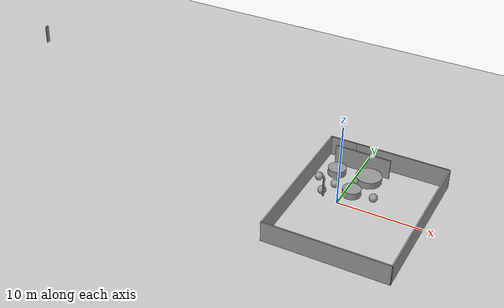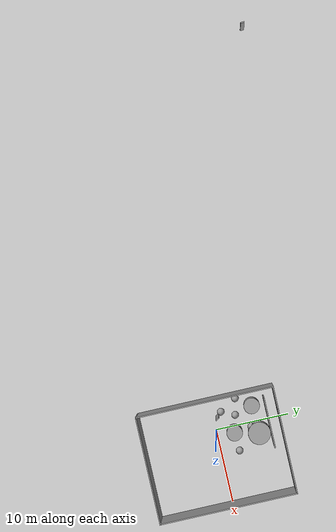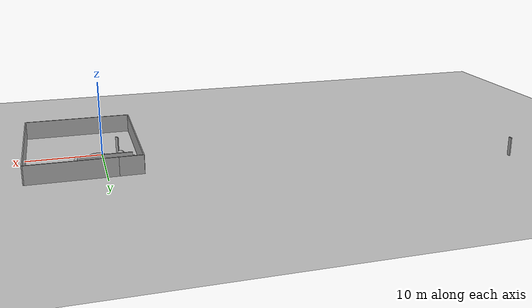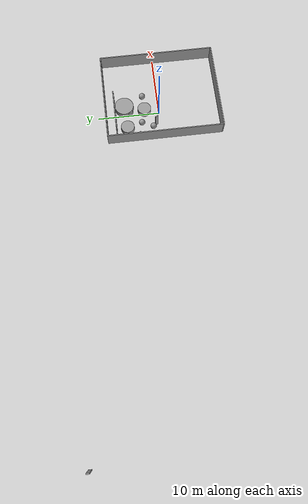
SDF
<sdf version="1.7">
 <world name="default">
  <model name="ground_plane">
   <static>1</static>
   <link name="link">
    <collision name="collision">
     <geometry><plane><normal>0 0 1</normal><size>100 100</size></plane></geometry>
     <surface><friction><ode><mu>100</mu><mu2>50</mu2></ode></friction></surface>
    </collision>
    <visual name="visual">
     <cast_shadows>0</cast_shadows>
     <geometry><plane><normal>0 0 1</normal><size>100 100</size></plane></geometry>
     <material>
      <script><uri>file://media/materials/scripts/gazebo.material</uri><name>Gazebo/Grey</name></script>
     </material>
    </visual>
   </link>
  </model>
  <model name="Base_square">
   <pose>-21.2675 2.85477 0 0 -0 0</pose>
   <link name="Wall_17">
    <collision name="Wall_17_Collision">
     <geometry><box><size>18.75 0.15 2.5</size></box></geometry>
     <pose>0 0 1.25 0 -0 0</pose>
    </collision>
    <visual name="Wall_17_Visual">
     <pose>0 0 1.25 0 -0 0</pose>
     <geometry><box><size>18.75 0.15 2.5</size></box></geometry>
     <material>
      <script><uri>file://media/materials/scripts/gazebo.material</uri><name>Gazebo/Grey</name></script>
      <ambient>1 1 1 1</ambient>
     </material>
     <meta><layer>0</layer></meta>
    </visual>
    <pose>16.7268 -3.44544 0 0 -0 -1.5708</pose>
   </link>
   <link name="Wall_18">
    <collision name="Wall_18_Collision">
     <geometry><box><size>14.6395 0.15 2.5</size></box></geometry>
     <pose>0 0 1.25 0 -0 0</pose>
    </collision>
    <visual name="Wall_18_Visual">
     <pose>0 0 1.25 0 -0 0</pose>
     <geometry><box><size>14.6395 0.15 2.5</size></box></geometry>
     <material>
      <script><uri>file://media/materials/scripts/gazebo.material</uri><name>Gazebo/Grey</name></script>
      <ambient>1 1 1 1</ambient>
     </material>
     <meta><layer>0</layer></meta>
    </visual>
    <pose>23.9714 -12.7722 0 0 -0 0.003693</pose>
   </link>
   <link name="Wall_19">
    <collision name="Wall_19_Collision">
     <geometry><box><size>18.75 0.15 2.5</size></box></geometry>
     <pose>0 0 1.25 0 -0 0</pose>
    </collision>
    <visual name="Wall_19_Visual">
     <pose>0 0 1.25 0 -0 0</pose>
     <geometry><box><size>18.75 0.15 2.5</size></box></geometry>
     <material>
      <script><uri>file://media/materials/scripts/gazebo.material</uri><name>Gazebo/Grey</name></script>
      <ambient>1 1 1 1</ambient>
     </material>
     <meta><layer>0</layer></meta>
    </visual>
    <pose>31.216 -3.44544 0 0 -0 1.5708</pose>
   </link>
   <link name="Wall_20">
    <collision name="Wall_20_Collision">
     <geometry><box><size>11.5 0.15 2.5</size></box></geometry>
     <pose>0 0 1.25 0 -0 0</pose>
    </collision>
    <visual name="Wall_20_Visual">
     <pose>0 0 1.25 0 -0 0</pose>
     <geometry><box><size>11.5 0.15 2.5</size></box></geometry>
     <material>
      <script><uri>file://media/materials/scripts/gazebo.material</uri><name>Gazebo/Grey</name></script>
      <ambient>1 1 1 1</ambient>
     </material>
     <meta><layer>0</layer></meta>
    </visual>
    <pose>25.541 5.85456 0 0 -0 3.14159</pose>
   </link>
   <link name="Wall_32">
    <collision name="Wall_32_Collision">
     <geometry><box><size>3.25 0.15 2.5</size></box></geometry>
     <pose>0 0 1.25 0 -0 0</pose>
    </collision>
    <visual name="Wall_32_Visual">
     <pose>0 0 1.25 0 -0 0</pose>
     <geometry><box><size>3.25 0.15 2.5</size></box></geometry>
     <material>
      <script><uri>file://media/materials/scripts/gazebo.material</uri><name>Gazebo/Grey</name></script>
      <ambient>1 1 1 1</ambient>
     </material>
     <meta><layer>0</layer></meta>
    </visual>
    <pose>18.316 5.85456 0 0 -0 3.14159</pose>
   </link>
   <link name="Wall_8">
    <collision name="Wall_8_Collision">
     <geometry><box><size>0.5 0.15 2.5</size></box></geometry>
     <pose>0 0 1.25 0 -0 0</pose>
    </collision>
    <visual name="Wall_8_Visual">
     <pose>0 0 1.25 0 -0 0</pose>
     <geometry><box><size>0.5 0.15 2.5</size></box></geometry>
     <material>
      <script><uri>file://media/materials/scripts/gazebo.material</uri><name>Gazebo/Grey</name></script>
      <ambient>1 1 1 1</ambient>
     </material>
     <meta><layer>0</layer></meta>
    </visual>
    <pose>-31.2164 12.6242 0 0 -0 -1.5708</pose>
   </link>
   <static>1</static>
  </model>
  <model name="balls">
   <link name="link_1">
    <inertial>
     <mass>4.7096</mass>
     <inertia><ixx>1.77872</ixx><ixy>0</ixy><ixz>0</ixz><iyy>1.77872</iyy><iyz>0</iyz><izz>2.77251</izz></inertia>
    </inertial>
    <pose>-1.84281 1.89217 0 0 -0 0</pose>
    <visual name="visual">
     <geometry><cylinder><radius>1.08508</radius><length>1</length></cylinder></geometry>
     <material>
      <lighting>1</lighting>
      <script><uri>file://media/materials/scripts/gazebo.material</uri><name>Gazebo/Grey</name></script>
      <shader type="pixel"/>
     </material>
    </visual>
    <collision name="collision">
     <geometry><cylinder><radius>1.08508</radius><length>1</length></cylinder></geometry>
     <surface>
      <friction>
       <ode><mu>1</mu><mu2>1</mu2><fdir1>0 0 0</fdir1><slip1>0</slip1><slip2>0</slip2></ode>
       <torsional>
        <coefficient>1</coefficient>
        <patch_radius>0</patch_radius>
        <surface_radius>0</surface_radius>
        <use_patch_radius>1</use_patch_radius>
        <ode><slip>0</slip></ode>
       </torsional>
      </friction>
      <bounce><restitution_coefficient>0</restitution_coefficient><threshold>1e+06</threshold></bounce>
      <contact>
       <collide_without_contact>0</collide_without_contact>
       <collide_without_contact_bitmask>1</collide_without_contact_bitmask>
       <collide_bitmask>1</collide_bitmask>
       <ode>
        <soft_cfm>0</soft_cfm>
        <soft_erp>0.2</soft_erp>
        <kp>1e+13</kp>
        <kd>1</kd>
        <max_vel>0.01</max_vel>
        <min_depth>0</min_depth>
       </ode>
       <bullet>
        <split_impulse>1</split_impulse>
        <split_impulse_penetration_threshold>-0.01</split_impulse_penetration_threshold>
        <soft_cfm>0</soft_cfm>
        <soft_erp>0.2</soft_erp>
        <kp>1e+13</kp>
        <kd>1</kd>
       </bullet>
      </contact>
     </surface>
    </collision>
   </link>
   <link name="link_1_clone">
    <inertial>
     <mass>4.7096</mass>
     <inertia><ixx>1.77872</ixx><ixy>0</ixy><ixz>0</ixz><iyy>1.77872</iyy><iyz>0</iyz><izz>2.77251</izz></inertia>
    </inertial>
    <pose>1.23489 -1.16049 0 0 -0 0</pose>
    <visual name="visual">
     <geometry><cylinder><radius>1.08508</radius><length>1</length></cylinder></geometry>
     <material>
      <lighting>1</lighting>
      <script><uri>file://media/materials/scripts/gazebo.material</uri><name>Gazebo/Grey</name></script>
      <shader type="pixel"/>
     </material>
    </visual>
    <collision name="collision">
     <geometry><cylinder><radius>1.08508</radius><length>1</length></cylinder></geometry>
     <surface>
      <friction>
       <ode><mu>1</mu><mu2>1</mu2><fdir1>0 0 0</fdir1><slip1>0</slip1><slip2>0</slip2></ode>
       <torsional>
        <coefficient>1</coefficient>
        <patch_radius>0</patch_radius>
        <surface_radius>0</surface_radius>
        <use_patch_radius>1</use_patch_radius>
        <ode><slip>0</slip></ode>
       </torsional>
      </friction>
      <bounce><restitution_coefficient>0</restitution_coefficient><threshold>1e+06</threshold></bounce>
      <contact>
       <collide_without_contact>0</collide_without_contact>
       <collide_without_contact_bitmask>1</collide_without_contact_bitmask>
       <collide_bitmask>1</collide_bitmask>
       <ode>
        <soft_cfm>0</soft_cfm>
        <soft_erp>0.2</soft_erp>
        <kp>1e+13</kp>
        <kd>1</kd>
        <max_vel>0.01</max_vel>
        <min_depth>0</min_depth>
       </ode>
       <bullet>
        <split_impulse>1</split_impulse>
        <split_impulse_penetration_threshold>-0.01</split_impulse_penetration_threshold>
        <soft_cfm>0</soft_cfm>
        <soft_erp>0.2</soft_erp>
        <kp>1e+13</kp>
        <kd>1</kd>
       </bullet>
      </contact>
     </surface>
    </collision>
   </link>
   <link name="link_1_clone_0">
    <inertial>
     <mass>9.38328</mass>
     <inertia><ixx>6.28477</ixx><ixy>0</ixy><ixz>0</ixz><iyy>6.28477</iyy><iyz>0</iyz><izz>11.0057</izz></inertia>
    </inertial>
    <pose>2.01278 2.10753 0 0 -0 0</pose>
    <visual name="visual">
     <geometry><cylinder><radius>1.5316</radius><length>1</length></cylinder></geometry>
     <material>
      <lighting>1</lighting>
      <script><uri>file://media/materials/scripts/gazebo.material</uri><name>Gazebo/Grey</name></script>
      <shader type="pixel"/>
     </material>
    </visual>
    <collision name="collision">
     <geometry><cylinder><radius>1.5316</radius><length>1</length></cylinder></geometry>
     <surface>
      <friction>
       <ode><mu>1</mu><mu2>1</mu2><fdir1>0 0 0</fdir1><slip1>0</slip1><slip2>0</slip2></ode>
       <torsional>
        <coefficient>1</coefficient>
        <patch_radius>0</patch_radius>
        <surface_radius>0</surface_radius>
        <use_patch_radius>1</use_patch_radius>
        <ode><slip>0</slip></ode>
       </torsional>
      </friction>
      <bounce><restitution_coefficient>0</restitution_coefficient><threshold>1e+06</threshold></bounce>
      <contact>
       <collide_without_contact>0</collide_without_contact>
       <collide_without_contact_bitmask>1</collide_without_contact_bitmask>
       <collide_bitmask>1</collide_bitmask>
       <ode>
        <soft_cfm>0</soft_cfm>
        <soft_erp>0.2</soft_erp>
        <kp>1e+13</kp>
        <kd>1</kd>
        <max_vel>0.01</max_vel>
        <min_depth>0</min_depth>
       </ode>
       <bullet>
        <split_impulse>1</split_impulse>
        <split_impulse_penetration_threshold>-0.01</split_impulse_penetration_threshold>
        <soft_cfm>0</soft_cfm>
        <soft_erp>0.2</soft_erp>
        <kp>1e+13</kp>
        <kd>1</kd>
       </bullet>
      </contact>
     </surface>
    </collision>
   </link>
   <link name="link_2">
    <inertial>
     <mass>1</mass>
     <inertia><ixx>0.1</ixx><ixy>0</ixy><ixz>0</ixz><iyy>0.1</iyy><iyz>0</iyz><izz>0.1</izz></inertia>
    </inertial>
    <pose>-3.25164 -0.095891 0 0 -0 0</pose>
    <visual name="visual">
     <geometry><sphere><radius>0.5</radius></sphere></geometry>
     <material>
      <lighting>1</lighting>
      <script><uri>file://media/materials/scripts/gazebo.material</uri><name>Gazebo/Grey</name></script>
      <shader type="pixel"/>
     </material>
    </visual>
    <collision name="collision">
     <geometry><sphere><radius>0.5</radius></sphere></geometry>
     <surface>
      <friction>
       <ode><mu>1</mu><mu2>1</mu2><fdir1>0 0 0</fdir1><slip1>0</slip1><slip2>0</slip2></ode>
       <torsional>
        <coefficient>1</coefficient>
        <patch_radius>0</patch_radius>
        <surface_radius>0</surface_radius>
        <use_patch_radius>1</use_patch_radius>
        <ode><slip>0</slip></ode>
       </torsional>
      </friction>
      <bounce><restitution_coefficient>0</restitution_coefficient><threshold>1e+06</threshold></bounce>
      <contact>
       <collide_without_contact>0</collide_without_contact>
       <collide_without_contact_bitmask>1</collide_without_contact_bitmask>
       <collide_bitmask>1</collide_bitmask>
       <ode>
        <soft_cfm>0</soft_cfm>
        <soft_erp>0.2</soft_erp>
        <kp>1e+13</kp>
        <kd>1</kd>
        <max_vel>0.01</max_vel>
        <min_depth>0</min_depth>
       </ode>
       <bullet>
        <split_impulse>1</split_impulse>
        <split_impulse_penetration_threshold>-0.01</split_impulse_penetration_threshold>
        <soft_cfm>0</soft_cfm>
        <soft_erp>0.2</soft_erp>
        <kp>1e+13</kp>
        <kd>1</kd>
       </bullet>
      </contact>
     </surface>
    </collision>
   </link>
   <link name="link_3">
    <inertial>
     <mass>1</mass>
     <inertia><ixx>0.1</ixx><ixy>0</ixy><ixz>0</ixz><iyy>0.1</iyy><iyz>0</iyz><izz>0.1</izz></inertia>
    </inertial>
    <pose>-1.05073 -0.560109 0 0 -0 0</pose>
    <visual name="visual">
     <geometry><sphere><radius>0.5</radius></sphere></geometry>
     <material>
      <lighting>1</lighting>
      <script><uri>file://media/materials/scripts/gazebo.material</uri><name>Gazebo/Grey</name></script>
      <shader type="pixel"/>
     </material>
    </visual>
    <collision name="collision">
     <geometry><sphere><radius>0.5</radius></sphere></geometry>
     <surface>
      <friction>
       <ode><mu>1</mu><mu2>1</mu2><fdir1>0 0 0</fdir1><slip1>0</slip1><slip2>0</slip2></ode>
       <torsional>
        <coefficient>1</coefficient>
        <patch_radius>0</patch_radius>
        <surface_radius>0</surface_radius>
        <use_patch_radius>1</use_patch_radius>
        <ode><slip>0</slip></ode>
       </torsional>
      </friction>
      <bounce><restitution_coefficient>0</restitution_coefficient><threshold>1e+06</threshold></bounce>
      <contact>
       <collide_without_contact>0</collide_without_contact>
       <collide_without_contact_bitmask>1</collide_without_contact_bitmask>
       <collide_bitmask>1</collide_bitmask>
       <ode>
        <soft_cfm>0</soft_cfm>
        <soft_erp>0.2</soft_erp>
        <kp>1e+13</kp>
        <kd>1</kd>
        <max_vel>0.01</max_vel>
        <min_depth>0</min_depth>
       </ode>
       <bullet>
        <split_impulse>1</split_impulse>
        <split_impulse_penetration_threshold>-0.01</split_impulse_penetration_threshold>
        <soft_cfm>0</soft_cfm>
        <soft_erp>0.2</soft_erp>
        <kp>1e+13</kp>
        <kd>1</kd>
       </bullet>
      </contact>
     </surface>
    </collision>
   </link>
   <link name="link_4">
    <inertial>
     <mass>1</mass>
     <inertia><ixx>0.1</ixx><ixy>0</ixy><ixz>0</ixz><iyy>0.1</iyy><iyz>0</iyz><izz>0.1</izz></inertia>
    </inertial>
    <pose>-1.89756 -2.37877 0 0 -0 0</pose>
    <visual name="visual">
     <geometry><sphere><radius>0.5</radius></sphere></geometry>
     <material>
      <lighting>1</lighting>
      <script><uri>file://media/materials/scripts/gazebo.material</uri><name>Gazebo/Grey</name></script>
      <shader type="pixel"/>
     </material>
    </visual>
    <collision name="collision">
     <geometry><sphere><radius>0.5</radius></sphere></geometry>
     <surface>
      <friction>
       <ode><mu>1</mu><mu2>1</mu2><fdir1>0 0 0</fdir1><slip1>0</slip1><slip2>0</slip2></ode>
       <torsional>
        <coefficient>1</coefficient>
        <patch_radius>0</patch_radius>
        <surface_radius>0</surface_radius>
        <use_patch_radius>1</use_patch_radius>
        <ode><slip>0</slip></ode>
       </torsional>
      </friction>
      <bounce><restitution_coefficient>0</restitution_coefficient><threshold>1e+06</threshold></bounce>
      <contact>
       <collide_without_contact>0</collide_without_contact>
       <collide_without_contact_bitmask>1</collide_without_contact_bitmask>
       <collide_bitmask>1</collide_bitmask>
       <ode>
        <soft_cfm>0</soft_cfm>
        <soft_erp>0.2</soft_erp>
        <kp>1e+13</kp>
        <kd>1</kd>
        <max_vel>0.01</max_vel>
        <min_depth>0</min_depth>
       </ode>
       <bullet>
        <split_impulse>1</split_impulse>
        <split_impulse_penetration_threshold>-0.01</split_impulse_penetration_threshold>
        <soft_cfm>0</soft_cfm>
        <soft_erp>0.2</soft_erp>
        <kp>1e+13</kp>
        <kd>1</kd>
       </bullet>
      </contact>
     </surface>
    </collision>
   </link>
   <link name="link_5">
    <inertial>
     <mass>1</mass>
     <inertia><ixx>0.1</ixx><ixy>0</ixy><ixz>0</ixz><iyy>0.1</iyy><iyz>0</iyz><izz>0.1</izz></inertia>
    </inertial>
    <pose>0.98118 1.23028 0 0 -0 0</pose>
    <visual name="visual">
     <geometry><sphere><radius>0.5</radius></sphere></geometry>
     <material>
      <lighting>1</lighting>
      <script><uri>file://media/materials/scripts/gazebo.material</uri><name>Gazebo/Grey</name></script>
      <shader type="pixel"/>
     </material>
    </visual>
    <collision name="collision">
     <geometry><sphere><radius>0.5</radius></sphere></geometry>
     <surface>
      <friction>
       <ode><mu>1</mu><mu2>1</mu2><fdir1>0 0 0</fdir1><slip1>0</slip1><slip2>0</slip2></ode>
       <torsional>
        <coefficient>1</coefficient>
        <patch_radius>0</patch_radius>
        <surface_radius>0</surface_radius>
        <use_patch_radius>1</use_patch_radius>
        <ode><slip>0</slip></ode>
       </torsional>
      </friction>
      <bounce><restitution_coefficient>0</restitution_coefficient><threshold>1e+06</threshold></bounce>
      <contact>
       <collide_without_contact>0</collide_without_contact>
       <collide_without_contact_bitmask>1</collide_without_contact_bitmask>
       <collide_bitmask>1</collide_bitmask>
       <ode>
        <soft_cfm>0</soft_cfm>
        <soft_erp>0.2</soft_erp>
        <kp>1e+13</kp>
        <kd>1</kd>
        <max_vel>0.01</max_vel>
        <min_depth>0</min_depth>
       </ode>
       <bullet>
        <split_impulse>1</split_impulse>
        <split_impulse_penetration_threshold>-0.01</split_impulse_penetration_threshold>
        <soft_cfm>0</soft_cfm>
        <soft_erp>0.2</soft_erp>
        <kp>1e+13</kp>
        <kd>1</kd>
       </bullet>
      </contact>
     </surface>
    </collision>
   </link>
   <link name="link_6">
    <inertial>
     <mass>1</mass>
     <inertia><ixx>0.1</ixx><ixy>0</ixy><ixz>0</ixz><iyy>0.1</iyy><iyz>0</iyz><izz>0.1</izz></inertia>
    </inertial>
    <pose>3.8139 -1.03473 0 0 -0 0</pose>
    <visual name="visual">
     <geometry><sphere><radius>0.5</radius></sphere></geometry>
     <material>
      <lighting>1</lighting>
      <script><uri>file://media/materials/scripts/gazebo.material</uri><name>Gazebo/Grey</name></script>
      <shader type="pixel"/>
     </material>
    </visual>
    <collision name="collision">
     <geometry><sphere><radius>0.5</radius></sphere></geometry>
     <surface>
      <friction>
       <ode><mu>1</mu><mu2>1</mu2><fdir1>0 0 0</fdir1><slip1>0</slip1><slip2>0</slip2></ode>
       <torsional>
        <coefficient>1</coefficient>
        <patch_radius>0</patch_radius>
        <surface_radius>0</surface_radius>
        <use_patch_radius>1</use_patch_radius>
        <ode><slip>0</slip></ode>
       </torsional>
      </friction>
      <bounce><restitution_coefficient>0</restitution_coefficient><threshold>1e+06</threshold></bounce>
      <contact>
       <collide_without_contact>0</collide_without_contact>
       <collide_without_contact_bitmask>1</collide_without_contact_bitmask>
       <collide_bitmask>1</collide_bitmask>
       <ode>
        <soft_cfm>0</soft_cfm>
        <soft_erp>0.2</soft_erp>
        <kp>1e+13</kp>
        <kd>1</kd>
        <max_vel>0.01</max_vel>
        <min_depth>0</min_depth>
       </ode>
       <bullet>
        <split_impulse>1</split_impulse>
        <split_impulse_penetration_threshold>-0.01</split_impulse_penetration_threshold>
        <soft_cfm>0</soft_cfm>
        <soft_erp>0.2</soft_erp>
        <kp>1e+13</kp>
        <kd>1</kd>
       </bullet>
      </contact>
     </surface>
    </collision>
   </link>
   <static>1</static>
   <pose>-0.464685 3.50412 0.26905 0 -0 0</pose>
  </model>
  <model name="fix_gaps">
   <pose>0.068017 3.63648 0 0 -0 0</pose>
   <link name="Wall_7">
    <collision name="Wall_7_Collision">
     <geometry><box><size>6.75 0.15 2.5</size></box></geometry>
     <pose>0 0 1.25 0 -0 0</pose>
    </collision>
    <visual name="Wall_7_Visual">
     <pose>0 0 1.25 0 -0 0</pose>
     <geometry><box><size>6.75 0.15 2.5</size></box></geometry>
     <material>
      <script><uri>file://media/materials/scripts/gazebo.material</uri><name>Gazebo/Grey</name></script>
      <ambient>1 1 1 1</ambient>
     </material>
     <meta><layer>0</layer></meta>
    </visual>
    <pose>0 3.56148 0 0 -0 0</pose>
   </link>
   <static>1</static>
  </model>
  <model name="fix_wall_gap">
   <pose>-1.08742 0.418655 0 0 -0 0</pose>
   <link name="Wall_12">
    <collision name="Wall_12_Collision">
     <geometry><box><size>0.5 0.15 2.5</size></box></geometry>
     <pose>0 0 1.25 0 -0 0</pose>
    </collision>
    <visual name="Wall_12_Visual">
     <pose>0 0 1.25 0 -0 0</pose>
     <geometry><box><size>0.5 0.15 2.5</size></box></geometry>
     <material>
      <script><uri>file://media/materials/scripts/gazebo.material</uri><name>Gazebo/Grey</name></script>
      <ambient>1 1 1 1</ambient>
     </material>
     <meta><layer>0</layer></meta>
    </visual>
    <pose>-0.897463 0.164649 0 0 -0 2.0944</pose>
   </link>
   <static>1</static>
  </model>
 </world>
</sdf>
